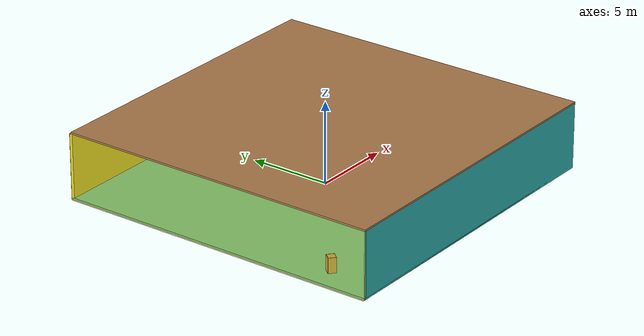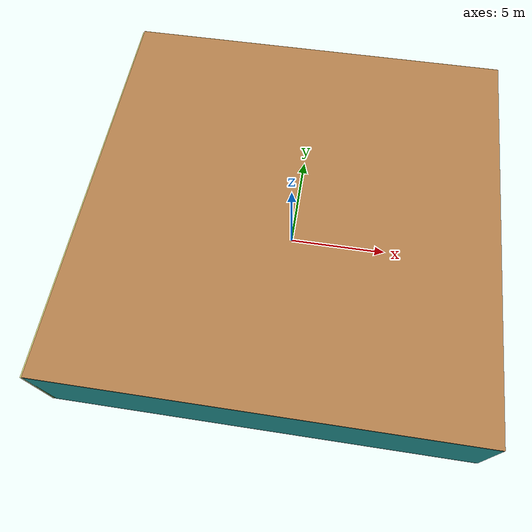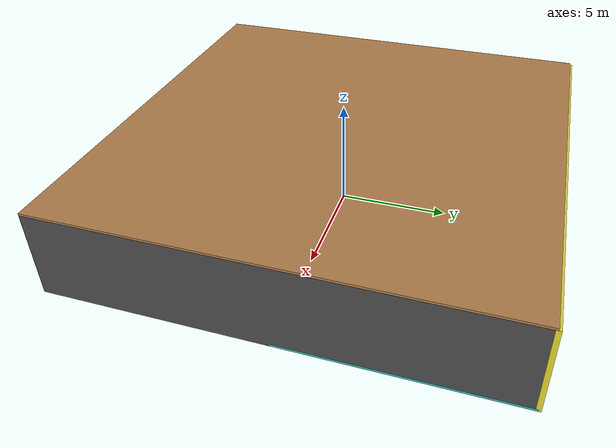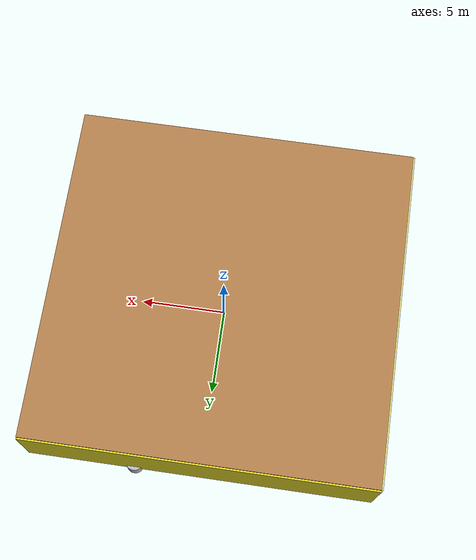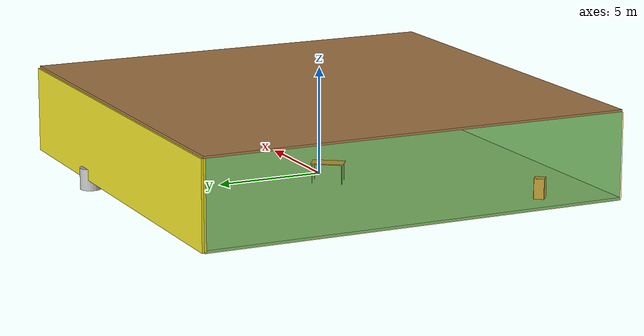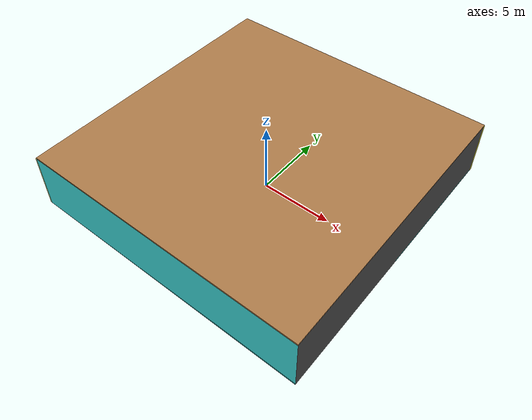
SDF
<sdf version="1.4">
 <world name="default">
  <physics type="ode">
   <max_step_size>0.001</max_step_size>
   <real_time_factor>1</real_time_factor>
   <real_time_update_rate>1000</real_time_update_rate>
   <gravity>0 0 -9.8</gravity>
  </physics>
  <scene><ambient>0.4 0.4 0.4 1</ambient><background>0.7 0.7 0.7 1</background><shadows>1</shadows></scene>
  <model name="Surrounding">
   <static>1</static>
   <link name="Ceiling">
    <collision name="Ceiling_Collision"><geometry><box><size>20 20 0.1</size></box></geometry></collision>
    <visual name="Ceiling_Visual">
     <geometry><box><size>20 20 0.1</size></box></geometry>
     <material>
      <script><uri>file://media/materials/scripts/gazebo.material</uri><name>Gazebo/WoodPallet</name></script>
     </material>
    </visual>
    <pose>0 0 4.05 0 0 0</pose>
   </link>
   <link name="Wall_South">
    <collision name="Wall_South_Collision">
     <geometry><box><size>20 0 4</size></box></geometry>
     <pose>0 0 2 0 -0 0</pose>
    </collision>
    <visual name="Wall_South_Visual">
     <pose>0 0 2 0 -0 0</pose>
     <geometry><box><size>20 0 4</size></box></geometry>
     <material>
      <script><uri>file://media/materials/scripts/gazebo.material</uri><name>Gazebo/TurquoiseGlow</name></script>
     </material>
    </visual>
    <velocity_decay><linear>0</linear><angular>0</angular></velocity_decay>
    <pose>0 -10 0 0 -0 0</pose>
   </link>
   <link name="Wall_East">
    <collision name="Wall_21_Collision">
     <geometry><box><size>20 0 4</size></box></geometry>
     <pose>0 0 2 0 -0 0</pose>
    </collision>
    <visual name="Wall_21_Visual">
     <pose>0 0 2 0 -0 0</pose>
     <geometry><box><size>20 0 4</size></box></geometry>
     <material>
      <script><uri>file://media/materials/scripts/gazebo.material</uri><name>Gazebo/Road</name></script>
     </material>
    </visual>
    <velocity_decay><linear>0</linear><angular>0</angular></velocity_decay>
    <pose>10 0 0 0 -0 1.5708</pose>
   </link>
   <link name="Wall_North">
    <collision name="Wall_22_Collision">
     <geometry><box><size>20 0.2 4</size></box></geometry>
     <pose>0 0 2 0 -0 0</pose>
    </collision>
    <visual name="Wall_22_Visual">
     <pose>0 0 2 0 -0 0</pose>
     <geometry><box><size>20 0.2 4</size></box></geometry>
     <material>
      <script><uri>file://media/materials/scripts/gazebo.material</uri><name>Gazebo/YellowGlow</name></script>
     </material>
    </visual>
    <velocity_decay><linear>0</linear><angular>0</angular></velocity_decay>
    <pose>0 10 0 0 -0 0</pose>
   </link>
   <link name="Wall_West">
    <collision name="Wall_23_Collision">
     <geometry><box><size>20 0.2 4</size></box></geometry>
     <pose>0 0 2 0 -0 0</pose>
    </collision>
    <visual name="Wall_23_Visual">
     <pose>0 0 2 0 -0 0</pose>
     <geometry><box><size>20 0.2 4</size></box></geometry>
     <material>
      <script>
       <uri>file://media/materials/scripts/gazebo.material</uri>
       <name>Gazebo/YellowTransparent</name>
      </script>
     </material>
    </visual>
    <velocity_decay><linear>0</linear><angular>0</angular></velocity_decay>
    <pose>-10 0 0 0 0 -1.5708</pose>
   </link>
   <link name="Ground_link">
    <collision name="collision">
     <pose>0 0 .05 0 -0 0</pose>
     <geometry><box><size>20 20 0.1</size></box></geometry>
    </collision>
    <visual name="visual">
     <pose>0 0 .05 0 -0 0</pose>
     <geometry><box><size>20 20 0.1</size></box></geometry>
     <material>
      <script>
       <uri>file://media/materials/scripts/gazebo.material</uri>
       <name>Gazebo/TurquoiseGlowOutline</name>
      </script>
     </material>
    </visual>
   </link>
   <static>1</static>
  </model>
  <spherical_coordinates>
   <surface_model>EARTH_WGS84</surface_model>
   <latitude_deg>0</latitude_deg>
   <longitude_deg>0</longitude_deg>
   <elevation>0</elevation>
   <heading_deg>0</heading_deg>
  </spherical_coordinates>
  <light name="lightball_0" type="diffuse">
   <diffuse>0.8 0.8 0.8 1</diffuse>
   <specular>0.2 0.2 0.2 1</specular>
   <attenuation>
    <range>100</range>
    <constant>0.7</constant>
    <linear>0.01</linear>
    <quadratic>0.001</quadratic>
   </attenuation>
   <direction>-0.5 0.1 -0.9</direction>
   <pose>-7.28557385392 -0.875839885065 1.67310314547 0 0 0</pose>
  </light>
  <light name="lightball_1" type="diffuse">
   <diffuse>0.8 0.8 0.8 1</diffuse>
   <specular>0.2 0.2 0.2 1</specular>
   <attenuation>
    <range>100</range>
    <constant>0.7</constant>
    <linear>0.01</linear>
    <quadratic>0.001</quadratic>
   </attenuation>
   <direction>-0.5 0.1 -0.9</direction>
   <pose>9.11695024886 3.29909798635 1.15877284162 0 0 0</pose>
  </light>
  <light name="lightball_2" type="diffuse">
   <diffuse>0.8 0.8 0.8 1</diffuse>
   <specular>0.2 0.2 0.2 1</specular>
   <attenuation>
    <range>100</range>
    <constant>0.7</constant>
    <linear>0.01</linear>
    <quadratic>0.001</quadratic>
   </attenuation>
   <direction>-0.5 0.1 -0.9</direction>
   <pose>5.23962009457 8.18899140185 3.6257627716 0 0 0</pose>
  </light>
  <include><uri>model://cabinet</uri><pose>-8.53782176864 -6.74967006201 0 0 0 2.43870296129</pose></include>
  <include><uri>model://table</uri><pose>-1.90821605311 0.475447828926 0 0 0 0.978781997186</pose></include>
  <include><uri>model://cabinet</uri><pose>3.88228408331 4.9697646071 0 0 0 2.5349627572</pose></include>
  <include>
   <uri>model://textured_shapes</uri>
   <pose>3.9472577282 8.33469462491 0 0 0 0.113279441749</pose>
  </include>
 </world>
</sdf>

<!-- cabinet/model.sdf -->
<sdf version="1.5">
  <model name="cabinet">
    <static>true</static>
    <link name="cabinet_bottom_plate">
      <inertial>
        <pose>0 0 -1 0 0 0</pose>
        <inertia>
          <ixx>2.050000</ixx>
          <ixy>0</ixy>
          <ixz>0</ixz>
          <iyy>2.050000</iyy>
          <iyz>0</iyz>
          <izz>2.050000</izz>
        </inertia>
        <mass>25.000000</mass>
      </inertial>
      <collision name="cabinet_bottom_plate_geom">
        <pose>0 0 0.010000 0 0 0</pose>
        <geometry>
          <box>
            <size>0.450000 0.450000 0.020000</size>
          </box>
        </geometry>
      </collision>
      <visual name="cabinet_bottom_plate_geom_visual">
        <pose>0 0 0.010000 0 0 0</pose>
        <geometry>
          <box>
            <size>0.450000 0.450000 0.020000</size>
          </box>
        </geometry>
        <material>
          <script>
            <uri>model://media/materials/scripts/gazebo.material</uri>
            <name>Gazebo/Wood</name>
          </script>
        </material>
      </visual>
      <collision name="cabinet_bottom_plate_geom_cabinet_back_plate">
        <pose>0.235000 0 0.510000 0 0 0</pose>
        <geometry>
          <box>
            <size>0.020000 0.450000 1.020000</size>
          </box>
        </geometry>
      </collision>
      <visual name="cabinet_bottom_plate_geom_cabinet_back_plate_visual">
        <pose>0.235000 0 0.510000 0 0 0</pose>
        <geometry>
          <box>
            <size>0.020000 0.450000 1.020000</size>
          </box>
        </geometry>
        <material>
          <script>
            <uri>model://media/materials/scripts/gazebo.material</uri>
            <name>Gazebo/Wood</name>
          </script>
        </material>
      </visual>
      <collision name="cabinet_bottom_plate_geom_cabinet_left_plate">
        <pose>0 0.235000 0.510000 0 0 0</pose>
        <geometry>
          <box>
            <size>0.450000 0.020000 1.020000</size>
          </box>
        </geometry>
      </collision>
      <visual name="cabinet_bottom_plate_geom_cabinet_left_plate_visual">
        <pose>0 0.235000 0.510000 0 0 0</pose>
        <geometry>
          <box>
            <size>0.450000 0.020000 1.020000</size>
          </box>
        </geometry>
        <material>
          <script>
            <uri>model://media/materials/scripts/gazebo.material</uri>
            <name>Gazebo/Wood</name>
          </script>
        </material>
      </visual>
      <collision name="cabinet_bottom_plate_geom_cabinet_middle_plate">
        <pose>0 0 0.510000 0 0 0</pose>
        <geometry>
          <box>
            <size>0.450000 0.450000 0.020000</size>
          </box>
        </geometry>
      </collision>
      <visual name="cabinet_bottom_plate_geom_cabinet_middle_plate_visual">
        <pose>0 0 0.510000 0 0 0</pose>
        <geometry>
          <box>
            <size>0.450000 0.450000 0.020000</size>
          </box>
        </geometry>
        <material>
          <script>
            <uri>model://media/materials/scripts/gazebo.material</uri>
            <name>Gazebo/Wood</name>
          </script>
        </material>
      </visual>
      <collision name="cabinet_bottom_plate_geom_cabinet_right_plate">
        <pose>0 -0.235000 0.510000 0 0 0</pose>
        <geometry>
          <box>
            <size>0.450000 0.020000 1.020000</size>
          </box>
        </geometry>
      </collision>
      <visual name="cabinet_bottom_plate_geom_cabinet_right_plate_visual">
        <pose>0 -0.235000 0.510000 0 0 0</pose>
        <geometry>
          <box>
            <size>0.450000 0.020000 1.020000</size>
          </box>
        </geometry>
        <material>
          <script>
            <uri>model://media/materials/scripts/gazebo.material</uri>
            <name>Gazebo/Wood</name>
          </script>
        </material>
      </visual>
      <collision name="cabinet_bottom_plate_geom_cabinet_top_plate">
        <pose>0 0 1.010000 0 0 0</pose>
        <geometry>
          <box>
            <size>0.450000 0.450000 0.020000</size>
          </box>
        </geometry>
      </collision>
      <visual name="cabinet_bottom_plate_geom_cabinet_top_plate_visual">
        <pose>0 0 1.010000 0 0 0</pose>
        <geometry>
          <box>
            <size>0.450000 0.450000 0.020000</size>
          </box>
        </geometry>
        <material>
          <script>
            <uri>model://media/materials/scripts/gazebo.material</uri>
            <name>Gazebo/Wood</name>
          </script>
        </material>
      </visual>
    </link>
  </model>
</sdf>

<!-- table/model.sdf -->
<sdf version="1.5">
  <model name="table">
    <static>true</static>
    <link name="link">
      <collision name="surface">
        <pose>0 0 1.0 0 0 0</pose>
        <geometry>
          <box>
            <size>1.5 0.8 0.03</size>
          </box>
        </geometry>
        <surface>
          <friction>
            <ode>
              <mu>0.6</mu>
              <mu2>0.6</mu2>
            </ode>
          </friction>
        </surface>
      </collision>
      <visual name="visual1">
        <pose>0 0 1.0 0 0 0</pose>
        <geometry>
          <box>
            <size>1.5 0.8 0.03</size>
          </box>
        </geometry>
        <material>
          <script>
            <uri>model://media/materials/scripts/gazebo.material</uri>
            <name>Gazebo/Wood</name>
          </script>
        </material>
      </visual>
      <collision name="front_left_leg">
        <pose>0.68 0.38 0.5 0 0 0</pose>
        <geometry>
          <cylinder>
            <radius>0.02</radius>
            <length>1.0</length>
          </cylinder>
        </geometry>
      </collision>
      <visual name="front_left_leg">
        <pose>0.68 0.38 0.5 0 0 0</pose>
        <geometry>
          <cylinder>
            <radius>0.02</radius>
            <length>1.0</length>
          </cylinder>
        </geometry>
        <material>
          <script>
            <uri>model://media/materials/scripts/gazebo.material</uri>
            <name>Gazebo/Grey</name>
          </script>
        </material>
      </visual>
      <collision name="front_right_leg">
        <pose>0.68 -0.38 0.5 0 0 0</pose>
        <geometry>
          <cylinder>
            <radius>0.02</radius>
            <length>1.0</length>
          </cylinder>
        </geometry>
      </collision>
      <visual name="front_right_leg">
        <pose>0.68 -0.38 0.5 0 0 0</pose>
        <geometry>
          <cylinder>
            <radius>0.02</radius>
            <length>1.0</length>
          </cylinder>
        </geometry>
        <material>
          <script>
            <uri>model://media/materials/scripts/gazebo.material</uri>
            <name>Gazebo/Grey</name>
          </script>
        </material>
      </visual>
      <collision name="back_right_leg">
        <pose>-0.68 -0.38 0.5 0 0 0</pose>
        <geometry>
          <cylinder>
            <radius>0.02</radius>
            <length>1.0</length>
          </cylinder>
        </geometry>
      </collision>
      <visual name="back_right_leg">
        <pose>-0.68 -0.38 0.5 0 0 0</pose>
        <geometry>
          <cylinder>
            <radius>0.02</radius>
            <length>1.0</length>
          </cylinder>
        </geometry>
        <material>
          <script>
            <uri>model://media/materials/scripts/gazebo.material</uri>
            <name>Gazebo/Grey</name>
          </script>
        </material>
      </visual>
      <collision name="back_left_leg">
        <pose>-0.68 0.38 0.5 0 0 0</pose>
        <geometry>
          <cylinder>
            <radius>0.02</radius>
            <length>1.0</length>
          </cylinder>
        </geometry>
      </collision>
      <visual name="back_left_leg">
        <pose>-0.68 0.38 0.5 0 0 0</pose>
        <geometry>
          <cylinder>
            <radius>0.02</radius>
            <length>1.0</length>
          </cylinder>
        </geometry>
        <material>
          <script>
            <uri>model://media/materials/scripts/gazebo.material</uri>
            <name>Gazebo/Grey</name>
          </script>
        </material>
      </visual>
    </link>
  </model>
</sdf>

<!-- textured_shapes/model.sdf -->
<sdf version="1.6">
  <model name="textured_shapes">
    <pose>0 0 0.5 0 0 0</pose>
    <link name="box">
      <pose>0 -1.5 0 0 0 0</pose>
      <collision name="collision">
        <geometry>
          <box>
            <size>1 1 1</size>
          </box>
        </geometry>
      </collision>
      <visual name="visual">
        <geometry>
          <box>
            <size>1 1 1</size>
          </box>
        </geometry>
        <material>
          <script>
            <uri>model://../model_source/models/textured_shapes/materials/scripts</uri>
            <uri>model://../model_source/models/textured_shapes/materials/textures</uri>
            <name>TexturedShape/Squares</name>
          </script>
        </material>
      </visual>
    </link>
    <link name="sphere">
      <collision name="collision">
        <geometry>
          <sphere>
            <radius>0.5</radius>
          </sphere>
        </geometry>
      </collision>
      <visual name="visual">
        <geometry>
          <sphere>
            <radius>0.5</radius>
          </sphere>
        </geometry>
        <material>
          <script>
            <uri>model://../model_source/models/textured_shapes/materials/scripts</uri>
            <uri>model://../model_source/models/textured_shapes/materials/textures</uri>
            <name>TexturedShape/Squares</name>
          </script>
        </material>
      </visual>
    </link>
    <link name="cylinder">
      <pose>0 1.5 0 0 0 0</pose>
      <collision name="collision">
        <geometry>
          <cylinder>
            <radius>0.5</radius>
            <length>1</length>
          </cylinder>
        </geometry>
      </collision>
      <visual name="visual">
        <geometry>
          <cylinder>
            <radius>0.5</radius>
            <length>1</length>
          </cylinder>
        </geometry>
        <material>
          <script>
            <uri>model://../model_source/models/textured_shapes/materials/scripts</uri>
            <uri>model://../model_source/models/textured_shapes/materials/textures</uri>
            <name>TexturedShape/Squares</name>
          </script>
        </material>
      </visual>
    </link>
  </model>
</sdf>
